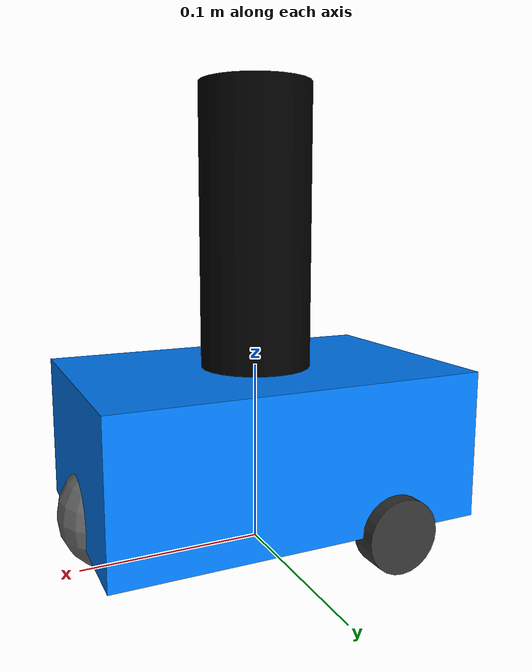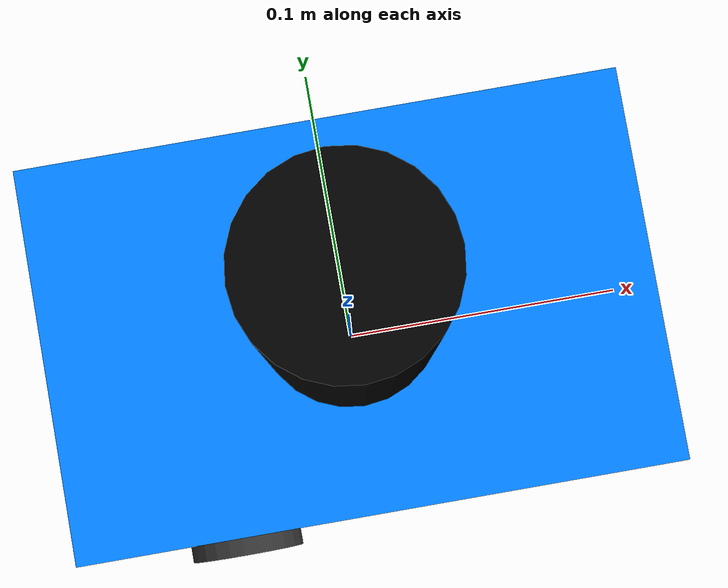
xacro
<?xml version="1.0"?>
<robot xmlns:xacro="http://www.ros.org/wiki/xacro" name="diff_drive_robot">

  <!-- 默认使用实车尺寸；Gazebo 可通过 Xacro 参数覆盖视觉/物理尺寸。 -->
  <xacro:arg name="wheel_radius" default="0.02"/>
  <xacro:arg name="wheel_separation" default="0.13"/>
  <xacro:arg name="wheel_width" default="0.015"/>
  <xacro:arg name="body_length" default="0.20"/>
  <xacro:arg name="body_width" default="0.13"/>
  <!-- 实车雷达相对车体 +X 顺时针约 37.5 度；仿真启动时覆盖为 0。 -->
  <xacro:arg name="lidar_yaw" default="-0.654498469"/>
  <xacro:property name="wheel_radius" value="$(arg wheel_radius)"/>
  <xacro:property name="wheel_separation" value="$(arg wheel_separation)"/>
  <xacro:property name="wheel_width" value="$(arg wheel_width)"/>
  <xacro:property name="body_length" value="$(arg body_length)"/>
  <xacro:property name="body_width" value="$(arg body_width)"/>
  <xacro:property name="lidar_yaw" value="$(arg lidar_yaw)"/>
  <xacro:property name="body_height" value="0.08"/>
  <xacro:property name="caster_radius" value="0.03"/>
  <xacro:property name="pole_height" value="0.15"/>

  <!-- 轮子放置：车身中偏后，左右对称 -->
  <xacro:property name="wheel_x" value="${-body_length/4}"/>
  <xacro:property name="wheel_y" value="${wheel_separation/2}"/>
  <xacro:property name="wheel_z" value="${-body_height/2}"/>

  <xacro:property name="body_mass" value="10"/>

  <!-- ===== 轮子 macro ===== -->
  <xacro:macro name="wheel" params="name prefix x_reflect y_reflect">
    <link name="${name}_wheel">
      <visual>
        <geometry><cylinder radius="${wheel_radius}" length="${wheel_width}"/></geometry>
        <material name="dark_grey"><color rgba="0.2 0.2 0.2 1"/></material>
      </visual>
      <collision>
        <geometry><cylinder radius="${wheel_radius}" length="${wheel_width}"/></geometry>
      </collision>
      <inertial>
        <mass value="0.5"/>
        <inertia ixx="0.001" iyy="0.001" izz="0.001" ixy="0" ixz="0" iyz="0"/>
      </inertial>
    </link>
    <joint name="${name}_wheel_joint" type="continuous">
      <parent link="base_link"/>
      <child link="${name}_wheel"/>
      <origin xyz="${x_reflect * wheel_x} ${y_reflect * wheel_y} ${wheel_z}" rpy="${pi/2} 0 0"/>
      <axis xyz="0 0 -1"/>
      <limit effort="50" velocity="20"/>
    </joint>
  </xacro:macro>

  <!-- ===== base_footprint ===== -->
  <link name="base_footprint"/>
  <joint name="base_joint" type="fixed">
    <parent link="base_footprint"/>
    <child link="base_link"/>
    <origin xyz="0 0 ${wheel_radius + body_height/2}" rpy="0 0 0"/>
  </joint>

  <!-- ===== base_link ===== -->
  <link name="base_link">
    <visual>
      <geometry><box size="${body_length} ${body_width} ${body_height}"/></geometry>
      <material name="blue"><color rgba="0 0.5 1 1"/></material>
    </visual>
    <collision>
      <geometry><box size="${body_length} ${body_width} ${body_height}"/></geometry>
    </collision>
    <inertial>
      <mass value="${body_mass}"/>
      <!-- ixx = m/12*(y²+z²), iyy = m/12*(x²+z²), izz = m/12*(x²+y²) -->
      <inertia
        ixx="${body_mass/12 * (body_width*body_width + body_height*body_height)}"
        iyy="${body_mass/12 * (body_length*body_length + body_height*body_height)}"
        izz="${body_mass/12 * (body_length*body_length + body_width*body_width)}"
        ixy="0" ixz="0" iyz="0"/>
    </inertial>
  </link>

  <!-- ===== 驱动轮（左右各一） ===== -->
  <xacro:wheel name="left"  prefix="left"  x_reflect="1"  y_reflect="1"/>
  <xacro:wheel name="right" prefix="right" x_reflect="1"  y_reflect="-1"/>

  <!-- ===== 前万向轮 ===== -->
  <link name="caster_link">
    <visual>
      <geometry><sphere radius="${caster_radius}"/></geometry>
      <material name="grey"><color rgba="0.4 0.4 0.4 1"/></material>
    </visual>
    <collision>
      <geometry><sphere radius="${caster_radius}"/></geometry>
      <surface>
        <friction><ode><mu>0.01</mu><mu2>0.01</mu2></ode></friction>
      </surface>
    </collision>
    <inertial>
      <mass value="0.01"/>
      <inertia ixx="1e-6" iyy="1e-6" izz="1e-6" ixy="0" ixz="0" iyz="0"/>
    </inertial>
  </link>
  <joint name="caster_joint" type="fixed">
    <parent link="base_link"/>
    <child link="caster_link"/>
    <origin xyz="${body_length/2 - 0.02} 0 ${caster_radius - wheel_radius - body_height/2}" rpy="0 0 0"/>
  </joint>

  <!-- ===== 支柱 + LiDAR ===== -->
  <link name="pole">
    <visual>
      <geometry><cylinder radius="0.03" length="${pole_height}"/></geometry>
      <material name="black"><color rgba="0 0 0 1"/></material>
    </visual>
    <collision>
      <geometry><cylinder radius="0.03" length="${pole_height}"/></geometry>
    </collision>
    <inertial>
      <mass value="0.1"/>
      <inertia ixx="1e-4" iyy="1e-4" izz="1e-4" ixy="0" ixz="0" iyz="0"/>
    </inertial>
  </link>
  <joint name="pole_joint" type="fixed">
    <parent link="base_link"/>
    <child link="pole"/>
    <origin xyz="0 0 ${body_height/2 + pole_height/2}" rpy="0 0 0"/>
  </joint>

  <link name="lidar_link"/>
  <joint name="lidar_joint" type="fixed">
    <parent link="pole"/>
    <child link="lidar_link"/>
    <origin xyz="0 0 ${pole_height/2 + 0.02}" rpy="0 0 ${lidar_yaw}"/>
  </joint>

</robot>
